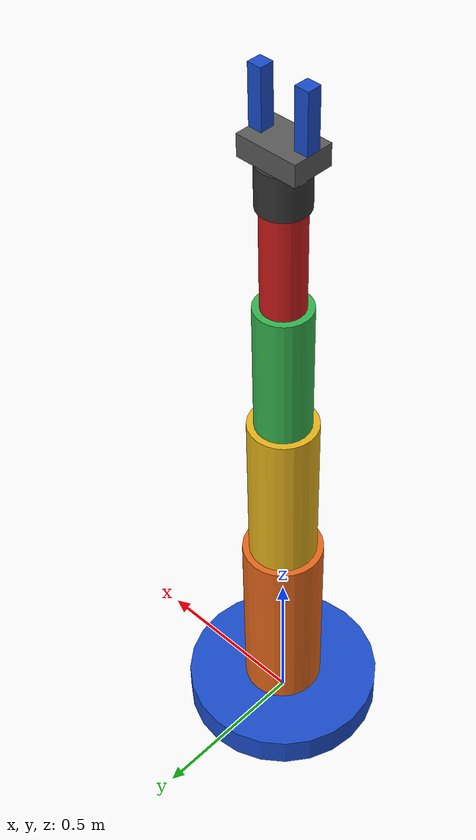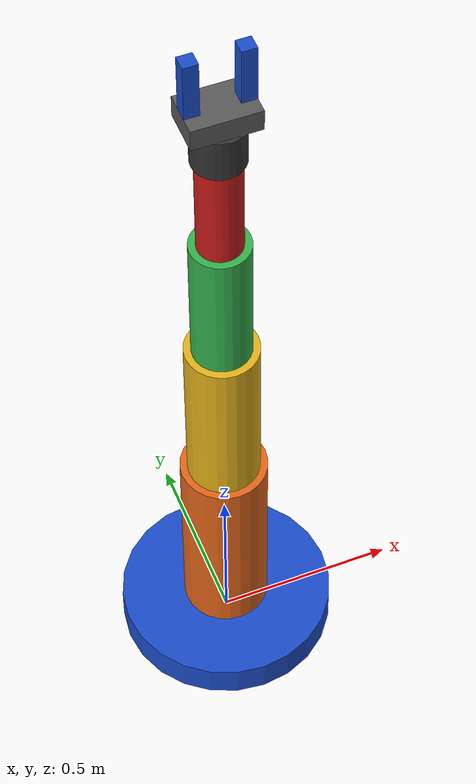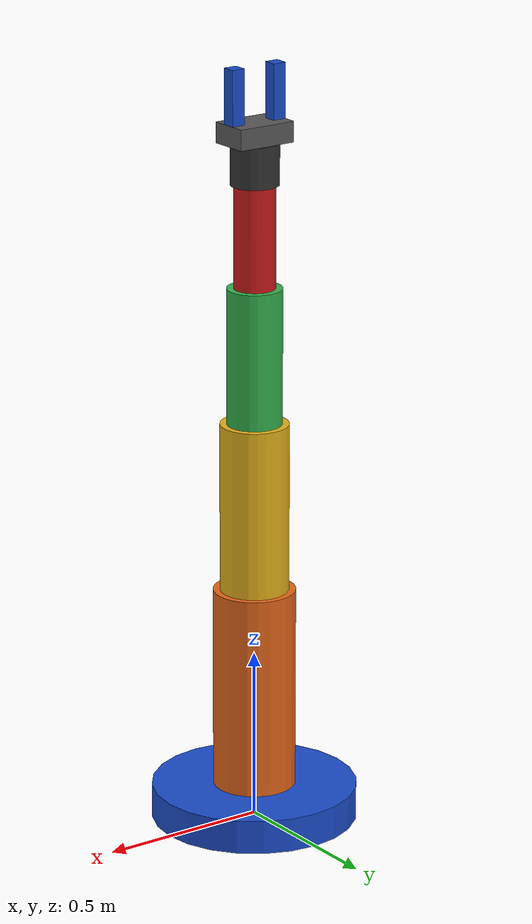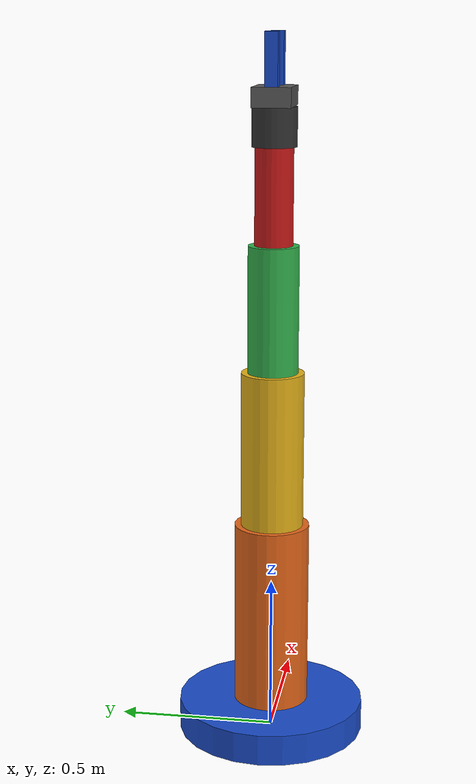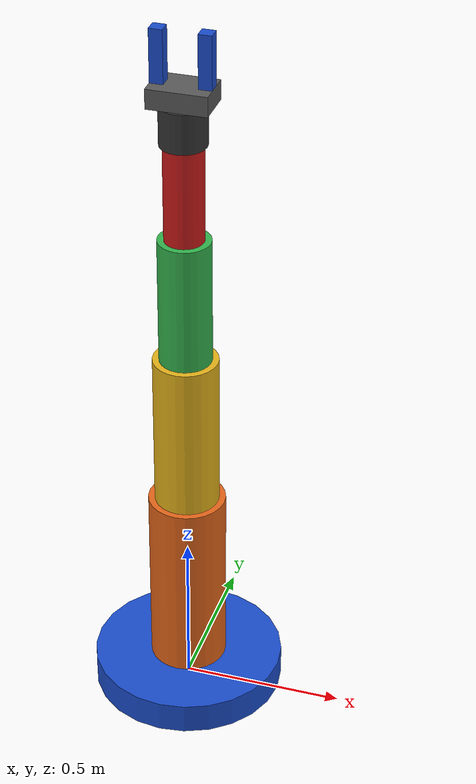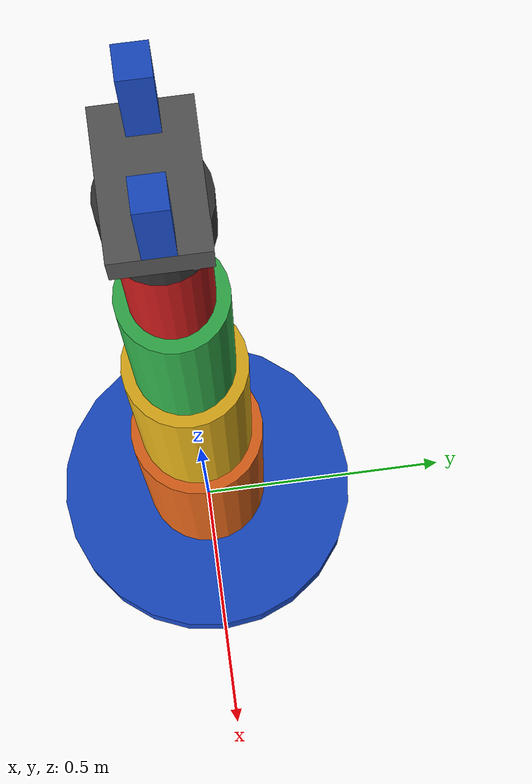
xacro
<?xml version="1.0"?>

<robot name="arm_4dof" xmlns:xacro="http://www.ros.org/wiki/xacro">

  <!-- PARAMETERS -->

  <xacro:property name="base_radius" value="0.30"/>
  <xacro:property name="base_height" value="0.10"/>

  <xacro:property name="link1_radius" value="0.12"/>
  <xacro:property name="link1_length" value="0.60"/>

  <xacro:property name="link2_radius" value="0.10"/>
  <xacro:property name="link2_length" value="0.50"/>

  <xacro:property name="link3_radius" value="0.08"/>
  <xacro:property name="link3_length" value="0.40"/>

  <xacro:property name="link4_radius" value="0.06"/>
  <xacro:property name="link4_length" value="0.30"/>

  <!-- BASE -->

  <link name="base_link">

    <visual>
      <geometry>
        <cylinder radius="${base_radius}" length="${base_height}"/>
      </geometry>

      <origin xyz="0 0 0.05" rpy="0 0 0"/>

      <material name="blue">
        <color rgba="0.1 0.3 0.8 1.0"/>
      </material>
    </visual>

    <collision>
      <geometry>
        <cylinder radius="${base_radius}" length="${base_height}"/>
      </geometry>

      <origin xyz="0 0 0.05" rpy="0 0 0"/>
    </collision>

    <!-- Approximate mass and inertia -->
    <inertial>
      <origin xyz="0 0 0.05" rpy="0 0 0"/>
      <mass value="5.0"/>
      <inertia
        ixx="0.115"
        ixy="0.0"
        ixz="0.0"
        iyy="0.115"
        iyz="0.0"
        izz="0.225"/>
    </inertial>

  </link>

  <!-- LINK 1 -->

  <link name="link1">

    <visual>
      <geometry>
        <cylinder radius="${link1_radius}" length="${link1_length}"/>
      </geometry>

      <origin xyz="0 0 ${link1_length/2}" rpy="0 0 0"/>

      <material name="orange">
        <color rgba="0.9 0.4 0.1 1.0"/>
      </material>
    </visual>

    <collision>
      <geometry>
        <cylinder radius="${link1_radius}" length="${link1_length}"/>
      </geometry>

      <origin xyz="0 0 ${link1_length/2}" rpy="0 0 0"/>
    </collision>

    <inertial>
      <origin xyz="0 0 ${link1_length/2}" rpy="0 0 0"/>
      <mass value="2.5"/>
      <inertia
        ixx="0.0975"
        ixy="0.0"
        ixz="0.0"
        iyy="0.0975"
        iyz="0.0"
        izz="0.018"/>
    </inertial>

  </link>

  <!-- LINK 2 -->

  <link name="link2">

    <visual>
      <geometry>
        <cylinder radius="${link2_radius}" length="${link2_length}"/>
      </geometry>

      <origin xyz="0 0 ${link2_length/2}" rpy="0 0 0"/>

      <material name="yellow">
        <color rgba="0.9 0.7 0.1 1.0"/>
      </material>
    </visual>

    <collision>
      <geometry>
        <cylinder radius="${link2_radius}" length="${link2_length}"/>
      </geometry>

      <origin xyz="0 0 ${link2_length/2}" rpy="0 0 0"/>
    </collision>

    <inertial>
      <origin xyz="0 0 ${link2_length/2}" rpy="0 0 0"/>
      <mass value="2.0"/>
      <inertia
        ixx="0.0458"
        ixy="0.0"
        ixz="0.0"
        iyy="0.0458"
        iyz="0.0"
        izz="0.010"/>
    </inertial>

  </link>

  <!-- LINK 3 -->

  <link name="link3">

    <visual>
      <geometry>
        <cylinder radius="${link3_radius}" length="${link3_length}"/>
      </geometry>

      <origin xyz="0 0 ${link3_length/2}" rpy="0 0 0"/>

      <material name="green">
        <color rgba="0.2 0.7 0.3 1.0"/>
      </material>
    </visual>

    <collision>
      <geometry>
        <cylinder radius="${link3_radius}" length="${link3_length}"/>
      </geometry>

      <origin xyz="0 0 ${link3_length/2}" rpy="0 0 0"/>
    </collision>

    <inertial>
      <origin xyz="0 0 ${link3_length/2}" rpy="0 0 0"/>
      <mass value="1.5"/>
      <inertia
        ixx="0.022"
        ixy="0.0"
        ixz="0.0"
        iyy="0.022"
        iyz="0.0"
        izz="0.0048"/>
    </inertial>

  </link>

  <!-- LINK 4 -->

  <link name="link4">

    <visual>
      <geometry>
        <cylinder radius="${link4_radius}" length="${link4_length}"/>
      </geometry>

      <origin xyz="0 0 ${link4_length/2}" rpy="0 0 0"/>

      <material name="red">
        <color rgba="0.8 0.1 0.1 1.0"/>
      </material>
    </visual>

    <collision>
      <geometry>
        <cylinder radius="${link4_radius}" length="${link4_length}"/>
      </geometry>

      <origin xyz="0 0 ${link4_length/2}" rpy="0 0 0"/>
    </collision>

    <inertial>
      <origin xyz="0 0 ${link4_length/2}" rpy="0 0 0"/>
      <mass value="1.0"/>
      <inertia
        ixx="0.0082"
        ixy="0.0"
        ixz="0.0"
        iyy="0.0082"
        iyz="0.0"
        izz="0.0018"/>
    </inertial>

  </link>

  <!-- JOINT 1 -->

  <joint name="joint1" type="revolute">

    <parent link="base_link"/>
    <child link="link1"/>

    <origin xyz="0 0 ${base_height}" rpy="0 0 0"/>

    <axis xyz="0 0 1"/>

    <limit
      lower="-3.14"
      upper="3.14"
      effort="10"
      velocity="1"/>

  </joint>

  <!-- JOINT 2 -->

  <joint name="joint2" type="revolute">

    <parent link="link1"/>
    <child link="link2"/>

    <origin xyz="0 0 ${link1_length}" rpy="0 0 0"/>

    <axis xyz="0 1 0"/>

    <limit
      lower="-1.57"
      upper="1.57"
      effort="10"
      velocity="1"/>

  </joint>

  <!-- JOINT 3 -->

  <joint name="joint3" type="revolute">

    <parent link="link2"/>
    <child link="link3"/>

    <origin xyz="0 0 ${link2_length}" rpy="0 0 0"/>

    <axis xyz="0 1 0"/>

    <limit
      lower="-1.57"
      upper="1.57"
      effort="10"
      velocity="1"/>

  </joint>

  <!-- JOINT 4 -->

  <joint name="joint4" type="revolute">

    <parent link="link3"/>
    <child link="link4"/>

    <origin xyz="0 0 ${link3_length}" rpy="0 0 0"/>

    <axis xyz="0 1 0"/>

    <limit
      lower="-3.14"
      upper="3.14"
      effort="10"
      velocity="1"/>

  </joint>

  <!-- WRIST -->

  <link name="wrist_link">

    <visual>
      <geometry>
        <cylinder radius="0.07" length="0.12"/>
      </geometry>

      <origin xyz="0 0 0.06" rpy="0 0 0"/>

      <material name="dark_gray">
        <color rgba="0.2 0.2 0.2 1.0"/>
      </material>
    </visual>

    <collision>
      <geometry>
        <cylinder radius="0.07" length="0.12"/>
      </geometry>

      <origin xyz="0 0 0.06" rpy="0 0 0"/>
    </collision>

    <inertial>
      <origin xyz="0 0 0.06" rpy="0 0 0"/>
      <mass value="0.5"/>
      <inertia
        ixx="0.0008"
        ixy="0.0"
        ixz="0.0"
        iyy="0.0008"
        iyz="0.0"
        izz="0.0012"/>
    </inertial>

  </link>

  <!-- WRIST JOINT -->

  <joint name="wrist_joint" type="fixed">

    <parent link="link4"/>
    <child link="wrist_link"/>

    <origin xyz="0 0 ${link4_length}" rpy="0 0 0"/>

  </joint>

  <!-- GRIPPER BASE -->

  <link name="gripper_base">

    <visual>
      <geometry>
        <box size="0.18 0.12 0.06"/>
      </geometry>

      <origin xyz="0 0 0.03" rpy="0 0 0"/>

      <material name="gripper_gray">
        <color rgba="0.35 0.35 0.35 1.0"/>
      </material>
    </visual>

    <collision>
      <geometry>
        <box size="0.18 0.12 0.06"/>
      </geometry>

      <origin xyz="0 0 0.03" rpy="0 0 0"/>
    </collision>

    <inertial>
      <origin xyz="0 0 0.03" rpy="0 0 0"/>
      <mass value="0.6"/>
      <inertia
        ixx="0.0008"
        ixy="0.0"
        ixz="0.0"
        iyy="0.0018"
        iyz="0.0"
        izz="0.0024"/>
    </inertial>

  </link>

  <!-- GRIPPER MOUNT -->

  <joint name="gripper_mount_joint" type="fixed">

    <parent link="wrist_link"/>
    <child link="gripper_base"/>

    <origin xyz="0 0 0.12" rpy="0 0 0"/>

  </joint>

  <!-- LEFT FINGER -->

  <link name="left_finger">

    <visual>
      <geometry>
        <box size="0.04 0.04 0.16"/>
      </geometry>

      <origin xyz="0 0 0.08" rpy="0 0 0"/>

      <material name="finger_blue">
        <color rgba="0.1 0.3 0.8 1.0"/>
      </material>
    </visual>

    <collision>
      <geometry>
        <box size="0.04 0.04 0.16"/>
      </geometry>

      <origin xyz="0 0 0.08" rpy="0 0 0"/>
    </collision>

    <inertial>
      <origin xyz="0 0 0.08" rpy="0 0 0"/>
      <mass value="0.15"/>
      <inertia
        ixx="0.00034"
        ixy="0.0"
        ixz="0.0"
        iyy="0.00034"
        iyz="0.0"
        izz="0.000004"/>
    </inertial>

  </link>

  <!-- LEFT FINGER JOINT -->

  <joint name="left_finger_joint" type="fixed">

    <parent link="gripper_base"/>
    <child link="left_finger"/>

    <origin xyz="0.07 0 0.06" rpy="0 0 0"/>

  </joint>

  <!-- RIGHT FINGER -->

  <link name="right_finger">

    <visual>
      <geometry>
        <box size="0.04 0.04 0.16"/>
      </geometry>

      <origin xyz="0 0 0.08" rpy="0 0 0"/>

      <material name="finger_blue">
        <color rgba="0.1 0.3 0.8 1.0"/>
      </material>
    </visual>

    <collision>
      <geometry>
        <box size="0.04 0.04 0.16"/>
      </geometry>

      <origin xyz="0 0 0.08" rpy="0 0 0"/>
    </collision>

    <inertial>
      <origin xyz="0 0 0.08" rpy="0 0 0"/>
      <mass value="0.15"/>
      <inertia
        ixx="0.00034"
        ixy="0.0"
        ixz="0.0"
        iyy="0.00034"
        iyz="0.0"
        izz="0.000004"/>
    </inertial>

  </link>

  <!-- RIGHT FINGER JOINT -->

  <joint name="right_finger_joint" type="fixed">

    <parent link="gripper_base"/>
    <child link="right_finger"/>

    <origin xyz="-0.07 0 0.06" rpy="0 0 0"/>

  </joint>

</robot>
